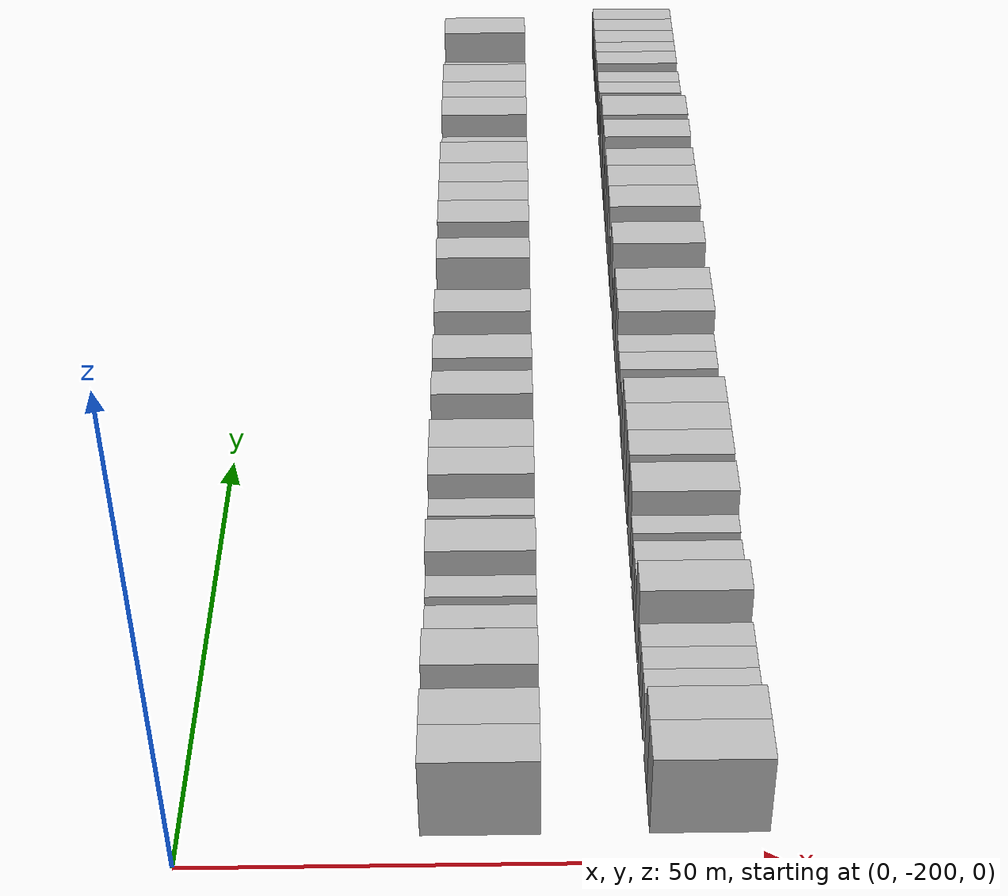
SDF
<sdf version="1.6">
 <world name="default">
  <model name="building_1">
   <static>1</static>
   <pose>25.0000 -194.9752 0 0.000000 0.000000 0.000000</pose>
   <link name="link">
    <pose>0 0 4.50 0 0 0</pose>
    <collision name="collision"><geometry><box><size>10.0000 4.0495 9.0000</size></box></geometry></collision>
    <visual name="visual">
     <cast_shadows>0</cast_shadows>
     <geometry><box><size>10.0000 4.0495 9.0000</size></box></geometry>
     <material>
      <script>
       <uri>model://HANNAS_wall/materials/scripts</uri>
       <uri>model://HANNAS_wall/materials/textures</uri>
       <name>vrc/HANNAS_wall</name>
      </script>
     </material>
    </visual>
   </link>
  </model>
  <model name="building_2">
   <static>1</static>
   <pose>25.0000 -190.9780 0 0.000000 0.000000 0.000000</pose>
   <link name="link">
    <pose>0 0 4.50 0 0 0</pose>
    <collision name="collision"><geometry><box><size>10.0000 3.9449 9.0000</size></box></geometry></collision>
    <visual name="visual">
     <cast_shadows>0</cast_shadows>
     <geometry><box><size>10.0000 3.9449 9.0000</size></box></geometry>
     <material>
      <script>
       <uri>model://HANNAS_wall/materials/scripts</uri>
       <uri>model://HANNAS_wall/materials/textures</uri>
       <name>vrc/HANNAS_wall</name>
      </script>
     </material>
    </visual>
   </link>
  </model>
  <model name="building_3">
   <static>1</static>
   <pose>25.0000 -187.6837 0 0.000000 0.000000 0.000000</pose>
   <link name="link">
    <pose>0 0 3.00 0 0 0</pose>
    <collision name="collision"><geometry><box><size>10.0000 2.6437 6.0000</size></box></geometry></collision>
    <visual name="visual">
     <cast_shadows>0</cast_shadows>
     <geometry><box><size>10.0000 2.6437 6.0000</size></box></geometry>
     <material>
      <script>
       <uri>model://HANNAS_wall/materials/scripts</uri>
       <uri>model://HANNAS_wall/materials/textures</uri>
       <name>vrc/HANNAS_wall</name>
      </script>
     </material>
    </visual>
   </link>
  </model>
  <model name="building_4">
   <static>1</static>
   <pose>25.0000 -184.2484 0 0.000000 0.000000 0.000000</pose>
   <link name="link">
    <pose>0 0 4.50 0 0 0</pose>
    <collision name="collision"><geometry><box><size>10.0000 4.2269 9.0000</size></box></geometry></collision>
    <visual name="visual">
     <cast_shadows>0</cast_shadows>
     <geometry><box><size>10.0000 4.2269 9.0000</size></box></geometry>
     <material>
      <script>
       <uri>model://HANNAS_wall/materials/scripts</uri>
       <uri>model://HANNAS_wall/materials/textures</uri>
       <name>vrc/HANNAS_wall</name>
      </script>
     </material>
    </visual>
   </link>
  </model>
  <model name="building_5">
   <static>1</static>
   <pose>25.0000 -180.6615 0 0.000000 0.000000 0.000000</pose>
   <link name="link">
    <pose>0 0 3.00 0 0 0</pose>
    <collision name="collision"><geometry><box><size>10.0000 2.9470 6.0000</size></box></geometry></collision>
    <visual name="visual">
     <cast_shadows>0</cast_shadows>
     <geometry><box><size>10.0000 2.9470 6.0000</size></box></geometry>
     <material>
      <script>
       <uri>model://HANNAS_wall/materials/scripts</uri>
       <uri>model://HANNAS_wall/materials/textures</uri>
       <name>vrc/HANNAS_wall</name>
      </script>
     </material>
    </visual>
   </link>
  </model>
  <model name="building_6">
   <static>1</static>
   <pose>25.0000 -177.7502 0 0.000000 0.000000 0.000000</pose>
   <link name="link">
    <pose>0 0 3.00 0 0 0</pose>
    <collision name="collision"><geometry><box><size>10.0000 2.8756 6.0000</size></box></geometry></collision>
    <visual name="visual">
     <cast_shadows>0</cast_shadows>
     <geometry><box><size>10.0000 2.8756 6.0000</size></box></geometry>
     <material>
      <script>
       <uri>model://HANNAS_wall/materials/scripts</uri>
       <uri>model://HANNAS_wall/materials/textures</uri>
       <name>vrc/HANNAS_wall</name>
      </script>
     </material>
    </visual>
   </link>
  </model>
  <model name="building_7">
   <static>1</static>
   <pose>25.0000 -173.9485 0 0.000000 0.000000 0.000000</pose>
   <link name="link">
    <pose>0 0 3.00 0 0 0</pose>
    <collision name="collision"><geometry><box><size>10.0000 2.7279 6.0000</size></box></geometry></collision>
    <visual name="visual">
     <cast_shadows>0</cast_shadows>
     <geometry><box><size>10.0000 2.7279 6.0000</size></box></geometry>
     <material>
      <script>
       <uri>model://HANNAS_wall/materials/scripts</uri>
       <uri>model://HANNAS_wall/materials/textures</uri>
       <name>vrc/HANNAS_wall</name>
      </script>
     </material>
    </visual>
   </link>
  </model>
  <model name="building_8">
   <static>1</static>
   <pose>25.0000 -170.4557 0 0.000000 0.000000 0.000000</pose>
   <link name="link">
    <pose>0 0 4.50 0 0 0</pose>
    <collision name="collision"><geometry><box><size>10.0000 4.2579 9.0000</size></box></geometry></collision>
    <visual name="visual">
     <cast_shadows>0</cast_shadows>
     <geometry><box><size>10.0000 4.2579 9.0000</size></box></geometry>
     <material>
      <script>
       <uri>model://HANNAS_wall/materials/scripts</uri>
       <uri>model://HANNAS_wall/materials/textures</uri>
       <name>vrc/HANNAS_wall</name>
      </script>
     </material>
    </visual>
   </link>
  </model>
  <model name="building_9">
   <static>1</static>
   <pose>25.0000 -167.0054 0 0.000000 0.000000 0.000000</pose>
   <link name="link">
    <pose>0 0 3.00 0 0 0</pose>
    <collision name="collision"><geometry><box><size>10.0000 2.6426 6.0000</size></box></geometry></collision>
    <visual name="visual">
     <cast_shadows>0</cast_shadows>
     <geometry><box><size>10.0000 2.6426 6.0000</size></box></geometry>
     <material>
      <script>
       <uri>model://HANNAS_wall/materials/scripts</uri>
       <uri>model://HANNAS_wall/materials/textures</uri>
       <name>vrc/HANNAS_wall</name>
      </script>
     </material>
    </visual>
   </link>
  </model>
  <model name="building_10">
   <static>1</static>
   <pose>25.0000 -163.4575 0 0.000000 0.000000 0.000000</pose>
   <link name="link">
    <pose>0 0 3.00 0 0 0</pose>
    <collision name="collision"><geometry><box><size>10.0000 2.4532 6.0000</size></box></geometry></collision>
    <visual name="visual">
     <cast_shadows>0</cast_shadows>
     <geometry><box><size>10.0000 2.4532 6.0000</size></box></geometry>
     <material>
      <script>
       <uri>model://HANNAS_wall/materials/scripts</uri>
       <uri>model://HANNAS_wall/materials/textures</uri>
       <name>vrc/HANNAS_wall</name>
      </script>
     </material>
    </visual>
   </link>
  </model>
  <model name="building_11">
   <static>1</static>
   <pose>25.0000 -160.2927 0 0.000000 0.000000 0.000000</pose>
   <link name="link">
    <pose>0 0 4.50 0 0 0</pose>
    <collision name="collision"><geometry><box><size>10.0000 3.8765 9.0000</size></box></geometry></collision>
    <visual name="visual">
     <cast_shadows>0</cast_shadows>
     <geometry><box><size>10.0000 3.8765 9.0000</size></box></geometry>
     <material>
      <script>
       <uri>model://HANNAS_wall/materials/scripts</uri>
       <uri>model://HANNAS_wall/materials/textures</uri>
       <name>vrc/HANNAS_wall</name>
      </script>
     </material>
    </visual>
   </link>
  </model>
  <model name="building_12">
   <static>1</static>
   <pose>25.0000 -156.2672 0 0.000000 0.000000 0.000000</pose>
   <link name="link">
    <pose>0 0 4.50 0 0 0</pose>
    <collision name="collision"><geometry><box><size>10.0000 4.1745 9.0000</size></box></geometry></collision>
    <visual name="visual">
     <cast_shadows>0</cast_shadows>
     <geometry><box><size>10.0000 4.1745 9.0000</size></box></geometry>
     <material>
      <script>
       <uri>model://HANNAS_wall/materials/scripts</uri>
       <uri>model://HANNAS_wall/materials/textures</uri>
       <name>vrc/HANNAS_wall</name>
      </script>
     </material>
    </visual>
   </link>
  </model>
  <model name="building_13">
   <static>1</static>
   <pose>25.0000 -152.7964 0 0.000000 0.000000 0.000000</pose>
   <link name="link">
    <pose>0 0 3.00 0 0 0</pose>
    <collision name="collision"><geometry><box><size>10.0000 2.7671 6.0000</size></box></geometry></collision>
    <visual name="visual">
     <cast_shadows>0</cast_shadows>
     <geometry><box><size>10.0000 2.7671 6.0000</size></box></geometry>
     <material>
      <script>
       <uri>model://HANNAS_wall/materials/scripts</uri>
       <uri>model://HANNAS_wall/materials/textures</uri>
       <name>vrc/HANNAS_wall</name>
      </script>
     </material>
    </visual>
   </link>
  </model>
  <model name="building_14">
   <static>1</static>
   <pose>25.0000 -148.5535 0 0.000000 0.000000 0.000000</pose>
   <link name="link">
    <pose>0 0 4.50 0 0 0</pose>
    <collision name="collision"><geometry><box><size>10.0000 3.7188 9.0000</size></box></geometry></collision>
    <visual name="visual">
     <cast_shadows>0</cast_shadows>
     <geometry><box><size>10.0000 3.7188 9.0000</size></box></geometry>
     <material>
      <script>
       <uri>model://HANNAS_wall/materials/scripts</uri>
       <uri>model://HANNAS_wall/materials/textures</uri>
       <name>vrc/HANNAS_wall</name>
      </script>
     </material>
    </visual>
   </link>
  </model>
  <model name="building_15">
   <static>1</static>
   <pose>25.0000 -142.7608 0 0.000000 0.000000 0.000000</pose>
   <link name="link">
    <pose>0 0 4.50 0 0 0</pose>
    <collision name="collision"><geometry><box><size>10.0000 3.8666 9.0000</size></box></geometry></collision>
    <visual name="visual">
     <cast_shadows>0</cast_shadows>
     <geometry><box><size>10.0000 3.8666 9.0000</size></box></geometry>
     <material>
      <script>
       <uri>model://HANNAS_wall/materials/scripts</uri>
       <uri>model://HANNAS_wall/materials/textures</uri>
       <name>vrc/HANNAS_wall</name>
      </script>
     </material>
    </visual>
   </link>
  </model>
  <model name="building_16">
   <static>1</static>
   <pose>25.0000 -138.4152 0 0.000000 0.000000 0.000000</pose>
   <link name="link">
    <pose>0 0 3.00 0 0 0</pose>
    <collision name="collision"><geometry><box><size>10.0000 2.8246 6.0000</size></box></geometry></collision>
    <visual name="visual">
     <cast_shadows>0</cast_shadows>
     <geometry><box><size>10.0000 2.8246 6.0000</size></box></geometry>
     <material>
      <script>
       <uri>model://HANNAS_wall/materials/scripts</uri>
       <uri>model://HANNAS_wall/materials/textures</uri>
       <name>vrc/HANNAS_wall</name>
      </script>
     </material>
    </visual>
   </link>
  </model>
  <model name="building_17">
   <static>1</static>
   <pose>25.0000 -135.0712 0 0.000000 0.000000 0.000000</pose>
   <link name="link">
    <pose>0 0 4.50 0 0 0</pose>
    <collision name="collision"><geometry><box><size>10.0000 3.8633 9.0000</size></box></geometry></collision>
    <visual name="visual">
     <cast_shadows>0</cast_shadows>
     <geometry><box><size>10.0000 3.8633 9.0000</size></box></geometry>
     <material>
      <script>
       <uri>model://HANNAS_wall/materials/scripts</uri>
       <uri>model://HANNAS_wall/materials/textures</uri>
       <name>vrc/HANNAS_wall</name>
      </script>
     </material>
    </visual>
   </link>
  </model>
  <model name="building_18">
   <static>1</static>
   <pose>25.0000 -130.7995 0 0.000000 0.000000 0.000000</pose>
   <link name="link">
    <pose>0 0 3.00 0 0 0</pose>
    <collision name="collision"><geometry><box><size>10.0000 2.6801 6.0000</size></box></geometry></collision>
    <visual name="visual">
     <cast_shadows>0</cast_shadows>
     <geometry><box><size>10.0000 2.6801 6.0000</size></box></geometry>
     <material>
      <script>
       <uri>model://HANNAS_wall/materials/scripts</uri>
       <uri>model://HANNAS_wall/materials/textures</uri>
       <name>vrc/HANNAS_wall</name>
      </script>
     </material>
    </visual>
   </link>
  </model>
  <model name="building_19">
   <static>1</static>
   <pose>25.0000 -125.5500 0 0.000000 0.000000 0.000000</pose>
   <link name="link">
    <pose>0 0 4.50 0 0 0</pose>
    <collision name="collision"><geometry><box><size>10.0000 3.8190 9.0000</size></box></geometry></collision>
    <visual name="visual">
     <cast_shadows>0</cast_shadows>
     <geometry><box><size>10.0000 3.8190 9.0000</size></box></geometry>
     <material>
      <script>
       <uri>model://HANNAS_wall/materials/scripts</uri>
       <uri>model://HANNAS_wall/materials/textures</uri>
       <name>vrc/HANNAS_wall</name>
      </script>
     </material>
    </visual>
   </link>
  </model>
  <model name="building_20">
   <static>1</static>
   <pose>25.0000 -122.1705 0 0.000000 0.000000 0.000000</pose>
   <link name="link">
    <pose>0 0 3.00 0 0 0</pose>
    <collision name="collision"><geometry><box><size>10.0000 2.9399 6.0000</size></box></geometry></collision>
    <visual name="visual">
     <cast_shadows>0</cast_shadows>
     <geometry><box><size>10.0000 2.9399 6.0000</size></box></geometry>
     <material>
      <script>
       <uri>model://HANNAS_wall/materials/scripts</uri>
       <uri>model://HANNAS_wall/materials/textures</uri>
       <name>vrc/HANNAS_wall</name>
      </script>
     </material>
    </visual>
   </link>
  </model>
  <model name="building_21">
   <static>1</static>
   <pose>25.0000 -118.5584 0 0.000000 0.000000 0.000000</pose>
   <link name="link">
    <pose>0 0 4.50 0 0 0</pose>
    <collision name="collision"><geometry><box><size>10.0000 4.2843 9.0000</size></box></geometry></collision>
    <visual name="visual">
     <cast_shadows>0</cast_shadows>
     <geometry><box><size>10.0000 4.2843 9.0000</size></box></geometry>
     <material>
      <script>
       <uri>model://HANNAS_wall/materials/scripts</uri>
       <uri>model://HANNAS_wall/materials/textures</uri>
       <name>vrc/HANNAS_wall</name>
      </script>
     </material>
    </visual>
   </link>
  </model>
  <model name="building_22">
   <static>1</static>
   <pose>25.0000 -114.5460 0 0.000000 0.000000 0.000000</pose>
   <link name="link">
    <pose>0 0 4.50 0 0 0</pose>
    <collision name="collision"><geometry><box><size>10.0000 3.7405 9.0000</size></box></geometry></collision>
    <visual name="visual">
     <cast_shadows>0</cast_shadows>
     <geometry><box><size>10.0000 3.7405 9.0000</size></box></geometry>
     <material>
      <script>
       <uri>model://HANNAS_wall/materials/scripts</uri>
       <uri>model://HANNAS_wall/materials/textures</uri>
       <name>vrc/HANNAS_wall</name>
      </script>
     </material>
    </visual>
   </link>
  </model>
  <model name="building_23">
   <static>1</static>
   <pose>25.0000 -110.7014 0 0.000000 0.000000 0.000000</pose>
   <link name="link">
    <pose>0 0 4.50 0 0 0</pose>
    <collision name="collision"><geometry><box><size>10.0000 3.9487 9.0000</size></box></geometry></collision>
    <visual name="visual">
     <cast_shadows>0</cast_shadows>
     <geometry><box><size>10.0000 3.9487 9.0000</size></box></geometry>
     <material>
      <script>
       <uri>model://HANNAS_wall/materials/scripts</uri>
       <uri>model://HANNAS_wall/materials/textures</uri>
       <name>vrc/HANNAS_wall</name>
      </script>
     </material>
    </visual>
   </link>
  </model>
  <model name="building_24">
   <static>1</static>
   <pose>25.0000 -106.5193 0 0.000000 0.000000 0.000000</pose>
   <link name="link">
    <pose>0 0 4.50 0 0 0</pose>
    <collision name="collision"><geometry><box><size>10.0000 4.4155 9.0000</size></box></geometry></collision>
    <visual name="visual">
     <cast_shadows>0</cast_shadows>
     <geometry><box><size>10.0000 4.4155 9.0000</size></box></geometry>
     <material>
      <script>
       <uri>model://HANNAS_wall/materials/scripts</uri>
       <uri>model://HANNAS_wall/materials/textures</uri>
       <name>vrc/HANNAS_wall</name>
      </script>
     </material>
    </visual>
   </link>
  </model>
  <model name="building_25">
   <static>1</static>
   <pose>25.0000 -102.8213 0 0.000000 0.000000 0.000000</pose>
   <link name="link">
    <pose>0 0 3.00 0 0 0</pose>
    <collision name="collision"><geometry><box><size>10.0000 2.9803 6.0000</size></box></geometry></collision>
    <visual name="visual">
     <cast_shadows>0</cast_shadows>
     <geometry><box><size>10.0000 2.9803 6.0000</size></box></geometry>
     <material>
      <script>
       <uri>model://HANNAS_wall/materials/scripts</uri>
       <uri>model://HANNAS_wall/materials/textures</uri>
       <name>vrc/HANNAS_wall</name>
      </script>
     </material>
    </visual>
   </link>
  </model>
  <model name="building_26">
   <static>1</static>
   <pose>25.0000 -99.8959 0 0.000000 0.000000 0.000000</pose>
   <link name="link">
    <pose>0 0 3.00 0 0 0</pose>
    <collision name="collision"><geometry><box><size>10.0000 2.8706 6.0000</size></box></geometry></collision>
    <visual name="visual">
     <cast_shadows>0</cast_shadows>
     <geometry><box><size>10.0000 2.8706 6.0000</size></box></geometry>
     <material>
      <script>
       <uri>model://HANNAS_wall/materials/scripts</uri>
       <uri>model://HANNAS_wall/materials/textures</uri>
       <name>vrc/HANNAS_wall</name>
      </script>
     </material>
    </visual>
   </link>
  </model>
  <model name="building_27">
   <static>1</static>
   <pose>25.0000 -96.4056 0 0.000000 0.000000 0.000000</pose>
   <link name="link">
    <pose>0 0 4.50 0 0 0</pose>
    <collision name="collision"><geometry><box><size>10.0000 4.1100 9.0000</size></box></geometry></collision>
    <visual name="visual">
     <cast_shadows>0</cast_shadows>
     <geometry><box><size>10.0000 4.1100 9.0000</size></box></geometry>
     <material>
      <script>
       <uri>model://HANNAS_wall/materials/scripts</uri>
       <uri>model://HANNAS_wall/materials/textures</uri>
       <name>vrc/HANNAS_wall</name>
      </script>
     </material>
    </visual>
   </link>
  </model>
  <model name="building_28">
   <static>1</static>
   <pose>25.0000 -92.5490 0 0.000000 0.000000 0.000000</pose>
   <link name="link">
    <pose>0 0 4.50 0 0 0</pose>
    <collision name="collision"><geometry><box><size>10.0000 3.6030 9.0000</size></box></geometry></collision>
    <visual name="visual">
     <cast_shadows>0</cast_shadows>
     <geometry><box><size>10.0000 3.6030 9.0000</size></box></geometry>
     <material>
      <script>
       <uri>model://HANNAS_wall/materials/scripts</uri>
       <uri>model://HANNAS_wall/materials/textures</uri>
       <name>vrc/HANNAS_wall</name>
      </script>
     </material>
    </visual>
   </link>
  </model>
  <model name="building_29">
   <static>1</static>
   <pose>25.0000 -88.7035 0 0.000000 0.000000 0.000000</pose>
   <link name="link">
    <pose>0 0 4.50 0 0 0</pose>
    <collision name="collision"><geometry><box><size>10.0000 4.0882 9.0000</size></box></geometry></collision>
    <visual name="visual">
     <cast_shadows>0</cast_shadows>
     <geometry><box><size>10.0000 4.0882 9.0000</size></box></geometry>
     <material>
      <script>
       <uri>model://HANNAS_wall/materials/scripts</uri>
       <uri>model://HANNAS_wall/materials/textures</uri>
       <name>vrc/HANNAS_wall</name>
      </script>
     </material>
    </visual>
   </link>
  </model>
  <model name="building_30">
   <static>1</static>
   <pose>25.0000 -85.2844 0 0.000000 0.000000 0.000000</pose>
   <link name="link">
    <pose>0 0 3.00 0 0 0</pose>
    <collision name="collision"><geometry><box><size>10.0000 2.7500 6.0000</size></box></geometry></collision>
    <visual name="visual">
     <cast_shadows>0</cast_shadows>
     <geometry><box><size>10.0000 2.7500 6.0000</size></box></geometry>
     <material>
      <script>
       <uri>model://HANNAS_wall/materials/scripts</uri>
       <uri>model://HANNAS_wall/materials/textures</uri>
       <name>vrc/HANNAS_wall</name>
      </script>
     </material>
    </visual>
   </link>
  </model>
  <model name="building_31">
   <static>1</static>
   <pose>25.0000 -82.4349 0 0.000000 0.000000 0.000000</pose>
   <link name="link">
    <pose>0 0 3.00 0 0 0</pose>
    <collision name="collision"><geometry><box><size>10.0000 2.9490 6.0000</size></box></geometry></collision>
    <visual name="visual">
     <cast_shadows>0</cast_shadows>
     <geometry><box><size>10.0000 2.9490 6.0000</size></box></geometry>
     <material>
      <script>
       <uri>model://HANNAS_wall/materials/scripts</uri>
       <uri>model://HANNAS_wall/materials/textures</uri>
       <name>vrc/HANNAS_wall</name>
      </script>
     </material>
    </visual>
   </link>
  </model>
  <model name="building_32">
   <static>1</static>
   <pose>25.0000 -77.0061 0 0.000000 0.000000 0.000000</pose>
   <link name="link">
    <pose>0 0 4.50 0 0 0</pose>
    <collision name="collision"><geometry><box><size>10.0000 3.9085 9.0000</size></box></geometry></collision>
    <visual name="visual">
     <cast_shadows>0</cast_shadows>
     <geometry><box><size>10.0000 3.9085 9.0000</size></box></geometry>
     <material>
      <script>
       <uri>model://HANNAS_wall/materials/scripts</uri>
       <uri>model://HANNAS_wall/materials/textures</uri>
       <name>vrc/HANNAS_wall</name>
      </script>
     </material>
    </visual>
   </link>
  </model>
  <model name="building_33">
   <static>1</static>
   <pose>25.0000 -73.7055 0 0.000000 0.000000 0.000000</pose>
   <link name="link">
    <pose>0 0 3.00 0 0 0</pose>
    <collision name="collision"><geometry><box><size>10.0000 2.6928 6.0000</size></box></geometry></collision>
    <visual name="visual">
     <cast_shadows>0</cast_shadows>
     <geometry><box><size>10.0000 2.6928 6.0000</size></box></geometry>
     <material>
      <script>
       <uri>model://HANNAS_wall/materials/scripts</uri>
       <uri>model://HANNAS_wall/materials/textures</uri>
       <name>vrc/HANNAS_wall</name>
      </script>
     </material>
    </visual>
   </link>
  </model>
  <model name="building_34">
   <static>1</static>
   <pose>25.0000 -71.0634 0 0.000000 0.000000 0.000000</pose>
   <link name="link">
    <pose>0 0 3.00 0 0 0</pose>
    <collision name="collision"><geometry><box><size>10.0000 2.5914 6.0000</size></box></geometry></collision>
    <visual name="visual">
     <cast_shadows>0</cast_shadows>
     <geometry><box><size>10.0000 2.5914 6.0000</size></box></geometry>
     <material>
      <script>
       <uri>model://HANNAS_wall/materials/scripts</uri>
       <uri>model://HANNAS_wall/materials/textures</uri>
       <name>vrc/HANNAS_wall</name>
      </script>
     </material>
    </visual>
   </link>
  </model>
  <model name="building_104">
   <static>1</static>
   <pose>44.0000 -194.8557 0 0.000000 0.000000 0.000000</pose>
   <link name="link">
    <pose>0 0 4.50 0 0 0</pose>
    <collision name="collision"><geometry><box><size>10.0000 4.2886 9.0000</size></box></geometry></collision>
    <visual name="visual">
     <cast_shadows>0</cast_shadows>
     <geometry><box><size>10.0000 4.2886 9.0000</size></box></geometry>
     <material>
      <script>
       <uri>model://HANNAS_wall/materials/scripts</uri>
       <uri>model://HANNAS_wall/materials/textures</uri>
       <name>vrc/HANNAS_wall</name>
      </script>
     </material>
    </visual>
   </link>
  </model>
  <model name="building_105">
   <static>1</static>
   <pose>44.0000 -190.8731 0 0.000000 0.000000 0.000000</pose>
   <link name="link">
    <pose>0 0 4.50 0 0 0</pose>
    <collision name="collision"><geometry><box><size>10.0000 3.6766 9.0000</size></box></geometry></collision>
    <visual name="visual">
     <cast_shadows>0</cast_shadows>
     <geometry><box><size>10.0000 3.6766 9.0000</size></box></geometry>
     <material>
      <script>
       <uri>model://HANNAS_wall/materials/scripts</uri>
       <uri>model://HANNAS_wall/materials/textures</uri>
       <name>vrc/HANNAS_wall</name>
      </script>
     </material>
    </visual>
   </link>
  </model>
  <model name="building_106">
   <static>1</static>
   <pose>44.0000 -185.6435 0 0.000000 0.000000 0.000000</pose>
   <link name="link">
    <pose>0 0 3.00 0 0 0</pose>
    <collision name="collision"><geometry><box><size>10.0000 2.7827 6.0000</size></box></geometry></collision>
    <visual name="visual">
     <cast_shadows>0</cast_shadows>
     <geometry><box><size>10.0000 2.7827 6.0000</size></box></geometry>
     <material>
      <script>
       <uri>model://HANNAS_wall/materials/scripts</uri>
       <uri>model://HANNAS_wall/materials/textures</uri>
       <name>vrc/HANNAS_wall</name>
      </script>
     </material>
    </visual>
   </link>
  </model>
  <model name="building_107">
   <static>1</static>
   <pose>44.0000 -182.9568 0 0.000000 0.000000 0.000000</pose>
   <link name="link">
    <pose>0 0 3.00 0 0 0</pose>
    <collision name="collision"><geometry><box><size>10.0000 2.5907 6.0000</size></box></geometry></collision>
    <visual name="visual">
     <cast_shadows>0</cast_shadows>
     <geometry><box><size>10.0000 2.5907 6.0000</size></box></geometry>
     <material>
      <script>
       <uri>model://HANNAS_wall/materials/scripts</uri>
       <uri>model://HANNAS_wall/materials/textures</uri>
       <name>vrc/HANNAS_wall</name>
      </script>
     </material>
    </visual>
   </link>
  </model>
  <model name="building_108">
   <static>1</static>
   <pose>44.0000 -180.2577 0 0.000000 0.000000 0.000000</pose>
   <link name="link">
    <pose>0 0 3.00 0 0 0</pose>
    <collision name="collision"><geometry><box><size>10.0000 2.8075 6.0000</size></box></geometry></collision>
    <visual name="visual">
     <cast_shadows>0</cast_shadows>
     <geometry><box><size>10.0000 2.8075 6.0000</size></box></geometry>
     <material>
      <script>
       <uri>model://HANNAS_wall/materials/scripts</uri>
       <uri>model://HANNAS_wall/materials/textures</uri>
       <name>vrc/HANNAS_wall</name>
      </script>
     </material>
    </visual>
   </link>
  </model>
  <model name="building_109">
   <static>1</static>
   <pose>44.0000 -175.9350 0 0.000000 0.000000 0.000000</pose>
   <link name="link">
    <pose>0 0 4.50 0 0 0</pose>
    <collision name="collision"><geometry><box><size>10.0000 3.8379 9.0000</size></box></geometry></collision>
    <visual name="visual">
     <cast_shadows>0</cast_shadows>
     <geometry><box><size>10.0000 3.8379 9.0000</size></box></geometry>
     <material>
      <script>
       <uri>model://HANNAS_wall/materials/scripts</uri>
       <uri>model://HANNAS_wall/materials/textures</uri>
       <name>vrc/HANNAS_wall</name>
      </script>
     </material>
    </visual>
   </link>
  </model>
  <model name="building_110">
   <static>1</static>
   <pose>44.0000 -172.6588 0 0.000000 0.000000 0.000000</pose>
   <link name="link">
    <pose>0 0 3.00 0 0 0</pose>
    <collision name="collision"><geometry><box><size>10.0000 2.7145 6.0000</size></box></geometry></collision>
    <visual name="visual">
     <cast_shadows>0</cast_shadows>
     <geometry><box><size>10.0000 2.7145 6.0000</size></box></geometry>
     <material>
      <script>
       <uri>model://HANNAS_wall/materials/scripts</uri>
       <uri>model://HANNAS_wall/materials/textures</uri>
       <name>vrc/HANNAS_wall</name>
      </script>
     </material>
    </visual>
   </link>
  </model>
  <model name="building_111">
   <static>1</static>
   <pose>44.0000 -169.8060 0 0.000000 0.000000 0.000000</pose>
   <link name="link">
    <pose>0 0 3.00 0 0 0</pose>
    <collision name="collision"><geometry><box><size>10.0000 2.9911 6.0000</size></box></geometry></collision>
    <visual name="visual">
     <cast_shadows>0</cast_shadows>
     <geometry><box><size>10.0000 2.9911 6.0000</size></box></geometry>
     <material>
      <script>
       <uri>model://HANNAS_wall/materials/scripts</uri>
       <uri>model://HANNAS_wall/materials/textures</uri>
       <name>vrc/HANNAS_wall</name>
      </script>
     </material>
    </visual>
   </link>
  </model>
  <model name="building_112">
   <static>1</static>
   <pose>44.0000 -166.0971 0 0.000000 0.000000 0.000000</pose>
   <link name="link">
    <pose>0 0 3.00 0 0 0</pose>
    <collision name="collision"><geometry><box><size>10.0000 2.4268 6.0000</size></box></geometry></collision>
    <visual name="visual">
     <cast_shadows>0</cast_shadows>
     <geometry><box><size>10.0000 2.4268 6.0000</size></box></geometry>
     <material>
      <script>
       <uri>model://HANNAS_wall/materials/scripts</uri>
       <uri>model://HANNAS_wall/materials/textures</uri>
       <name>vrc/HANNAS_wall</name>
      </script>
     </material>
    </visual>
   </link>
  </model>
  <model name="building_113">
   <static>1</static>
   <pose>44.0000 -162.8069 0 0.000000 0.000000 0.000000</pose>
   <link name="link">
    <pose>0 0 4.50 0 0 0</pose>
    <collision name="collision"><geometry><box><size>10.0000 4.1535 9.0000</size></box></geometry></collision>
    <visual name="visual">
     <cast_shadows>0</cast_shadows>
     <geometry><box><size>10.0000 4.1535 9.0000</size></box></geometry>
     <material>
      <script>
       <uri>model://HANNAS_wall/materials/scripts</uri>
       <uri>model://HANNAS_wall/materials/textures</uri>
       <name>vrc/HANNAS_wall</name>
      </script>
     </material>
    </visual>
   </link>
  </model>
  <model name="building_114">
   <static>1</static>
   <pose>44.0000 -157.8930 0 0.000000 0.000000 0.000000</pose>
   <link name="link">
    <pose>0 0 4.50 0 0 0</pose>
    <collision name="collision"><geometry><box><size>10.0000 3.6743 9.0000</size></box></geometry></collision>
    <visual name="visual">
     <cast_shadows>0</cast_shadows>
     <geometry><box><size>10.0000 3.6743 9.0000</size></box></geometry>
     <material>
      <script>
       <uri>model://HANNAS_wall/materials/scripts</uri>
       <uri>model://HANNAS_wall/materials/textures</uri>
       <name>vrc/HANNAS_wall</name>
      </script>
     </material>
    </visual>
   </link>
  </model>
  <model name="building_115">
   <static>1</static>
   <pose>44.0000 -154.0162 0 0.000000 0.000000 0.000000</pose>
   <link name="link">
    <pose>0 0 4.50 0 0 0</pose>
    <collision name="collision"><geometry><box><size>10.0000 4.0792 9.0000</size></box></geometry></collision>
    <visual name="visual">
     <cast_shadows>0</cast_shadows>
     <geometry><box><size>10.0000 4.0792 9.0000</size></box></geometry>
     <material>
      <script>
       <uri>model://HANNAS_wall/materials/scripts</uri>
       <uri>model://HANNAS_wall/materials/textures</uri>
       <name>vrc/HANNAS_wall</name>
      </script>
     </material>
    </visual>
   </link>
  </model>
  <model name="building_116">
   <static>1</static>
   <pose>44.0000 -150.0028 0 0.000000 0.000000 0.000000</pose>
   <link name="link">
    <pose>0 0 4.50 0 0 0</pose>
    <collision name="collision"><geometry><box><size>10.0000 3.9476 9.0000</size></box></geometry></collision>
    <visual name="visual">
     <cast_shadows>0</cast_shadows>
     <geometry><box><size>10.0000 3.9476 9.0000</size></box></geometry>
     <material>
      <script>
       <uri>model://HANNAS_wall/materials/scripts</uri>
       <uri>model://HANNAS_wall/materials/textures</uri>
       <name>vrc/HANNAS_wall</name>
      </script>
     </material>
    </visual>
   </link>
  </model>
  <model name="building_117">
   <static>1</static>
   <pose>44.0000 -146.5435 0 0.000000 0.000000 0.000000</pose>
   <link name="link">
    <pose>0 0 3.00 0 0 0</pose>
    <collision name="collision"><geometry><box><size>10.0000 2.9709 6.0000</size></box></geometry></collision>
    <visual name="visual">
     <cast_shadows>0</cast_shadows>
     <geometry><box><size>10.0000 2.9709 6.0000</size></box></geometry>
     <material>
      <script>
       <uri>model://HANNAS_wall/materials/scripts</uri>
       <uri>model://HANNAS_wall/materials/textures</uri>
       <name>vrc/HANNAS_wall</name>
      </script>
     </material>
    </visual>
   </link>
  </model>
  <model name="building_118">
   <static>1</static>
   <pose>44.0000 -141.5828 0 0.000000 0.000000 0.000000</pose>
   <link name="link">
    <pose>0 0 3.00 0 0 0</pose>
    <collision name="collision"><geometry><box><size>10.0000 2.9506 6.0000</size></box></geometry></collision>
    <visual name="visual">
     <cast_shadows>0</cast_shadows>
     <geometry><box><size>10.0000 2.9506 6.0000</size></box></geometry>
     <material>
      <script>
       <uri>model://HANNAS_wall/materials/scripts</uri>
       <uri>model://HANNAS_wall/materials/textures</uri>
       <name>vrc/HANNAS_wall</name>
      </script>
     </material>
    </visual>
   </link>
  </model>
  <model name="building_119">
   <static>1</static>
   <pose>44.0000 -138.6603 0 0.000000 0.000000 0.000000</pose>
   <link name="link">
    <pose>0 0 3.00 0 0 0</pose>
    <collision name="collision"><geometry><box><size>10.0000 2.8942 6.0000</size></box></geometry></collision>
    <visual name="visual">
     <cast_shadows>0</cast_shadows>
     <geometry><box><size>10.0000 2.8942 6.0000</size></box></geometry>
     <material>
      <script>
       <uri>model://HANNAS_wall/materials/scripts</uri>
       <uri>model://HANNAS_wall/materials/textures</uri>
       <name>vrc/HANNAS_wall</name>
      </script>
     </material>
    </visual>
   </link>
  </model>
  <model name="building_120">
   <static>1</static>
   <pose>44.0000 -135.2993 0 0.000000 0.000000 0.000000</pose>
   <link name="link">
    <pose>0 0 4.50 0 0 0</pose>
    <collision name="collision"><geometry><box><size>10.0000 3.8279 9.0000</size></box></geometry></collision>
    <visual name="visual">
     <cast_shadows>0</cast_shadows>
     <geometry><box><size>10.0000 3.8279 9.0000</size></box></geometry>
     <material>
      <script>
       <uri>model://HANNAS_wall/materials/scripts</uri>
       <uri>model://HANNAS_wall/materials/textures</uri>
       <name>vrc/HANNAS_wall</name>
      </script>
     </material>
    </visual>
   </link>
  </model>
  <model name="building_121">
   <static>1</static>
   <pose>44.0000 -131.4509 0 0.000000 0.000000 0.000000</pose>
   <link name="link">
    <pose>0 0 4.50 0 0 0</pose>
    <collision name="collision"><geometry><box><size>10.0000 3.8688 9.0000</size></box></geometry></collision>
    <visual name="visual">
     <cast_shadows>0</cast_shadows>
     <geometry><box><size>10.0000 3.8688 9.0000</size></box></geometry>
     <material>
      <script>
       <uri>model://HANNAS_wall/materials/scripts</uri>
       <uri>model://HANNAS_wall/materials/textures</uri>
       <name>vrc/HANNAS_wall</name>
      </script>
     </material>
    </visual>
   </link>
  </model>
  <model name="building_122">
   <static>1</static>
   <pose>44.0000 -128.2875 0 0.000000 0.000000 0.000000</pose>
   <link name="link">
    <pose>0 0 3.00 0 0 0</pose>
    <collision name="collision"><geometry><box><size>10.0000 2.4580 6.0000</size></box></geometry></collision>
    <visual name="visual">
     <cast_shadows>0</cast_shadows>
     <geometry><box><size>10.0000 2.4580 6.0000</size></box></geometry>
     <material>
      <script>
       <uri>model://HANNAS_wall/materials/scripts</uri>
       <uri>model://HANNAS_wall/materials/textures</uri>
       <name>vrc/HANNAS_wall</name>
      </script>
     </material>
    </visual>
   </link>
  </model>
  <model name="building_123">
   <static>1</static>
   <pose>44.0000 -122.9733 0 0.000000 0.000000 0.000000</pose>
   <link name="link">
    <pose>0 0 4.50 0 0 0</pose>
    <collision name="collision"><geometry><box><size>10.0000 4.1703 9.0000</size></box></geometry></collision>
    <visual name="visual">
     <cast_shadows>0</cast_shadows>
     <geometry><box><size>10.0000 4.1703 9.0000</size></box></geometry>
     <material>
      <script>
       <uri>model://HANNAS_wall/materials/scripts</uri>
       <uri>model://HANNAS_wall/materials/textures</uri>
       <name>vrc/HANNAS_wall</name>
      </script>
     </material>
    </visual>
   </link>
  </model>
  <model name="building_124">
   <static>1</static>
   <pose>44.0000 -119.4177 0 0.000000 0.000000 0.000000</pose>
   <link name="link">
    <pose>0 0 3.00 0 0 0</pose>
    <collision name="collision"><geometry><box><size>10.0000 2.9409 6.0000</size></box></geometry></collision>
    <visual name="visual">
     <cast_shadows>0</cast_shadows>
     <geometry><box><size>10.0000 2.9409 6.0000</size></box></geometry>
     <material>
      <script>
       <uri>model://HANNAS_wall/materials/scripts</uri>
       <uri>model://HANNAS_wall/materials/textures</uri>
       <name>vrc/HANNAS_wall</name>
      </script>
     </material>
    </visual>
   </link>
  </model>
  <model name="building_125">
   <static>1</static>
   <pose>44.0000 -115.8198 0 0.000000 0.000000 0.000000</pose>
   <link name="link">
    <pose>0 0 4.50 0 0 0</pose>
    <collision name="collision"><geometry><box><size>10.0000 4.2550 9.0000</size></box></geometry></collision>
    <visual name="visual">
     <cast_shadows>0</cast_shadows>
     <geometry><box><size>10.0000 4.2550 9.0000</size></box></geometry>
     <material>
      <script>
       <uri>model://HANNAS_wall/materials/scripts</uri>
       <uri>model://HANNAS_wall/materials/textures</uri>
       <name>vrc/HANNAS_wall</name>
      </script>
     </material>
    </visual>
   </link>
  </model>
  <model name="building_126">
   <static>1</static>
   <pose>44.0000 -111.6314 0 0.000000 0.000000 0.000000</pose>
   <link name="link">
    <pose>0 0 4.50 0 0 0</pose>
    <collision name="collision"><geometry><box><size>10.0000 4.1218 9.0000</size></box></geometry></collision>
    <visual name="visual">
     <cast_shadows>0</cast_shadows>
     <geometry><box><size>10.0000 4.1218 9.0000</size></box></geometry>
     <material>
      <script>
       <uri>model://HANNAS_wall/materials/scripts</uri>
       <uri>model://HANNAS_wall/materials/textures</uri>
       <name>vrc/HANNAS_wall</name>
      </script>
     </material>
    </visual>
   </link>
  </model>
  <model name="building_127">
   <static>1</static>
   <pose>44.0000 -107.7674 0 0.000000 0.000000 0.000000</pose>
   <link name="link">
    <pose>0 0 4.50 0 0 0</pose>
    <collision name="collision"><geometry><box><size>10.0000 3.6062 9.0000</size></box></geometry></collision>
    <visual name="visual">
     <cast_shadows>0</cast_shadows>
     <geometry><box><size>10.0000 3.6062 9.0000</size></box></geometry>
     <material>
      <script>
       <uri>model://HANNAS_wall/materials/scripts</uri>
       <uri>model://HANNAS_wall/materials/textures</uri>
       <name>vrc/HANNAS_wall</name>
      </script>
     </material>
    </visual>
   </link>
  </model>
  <model name="building_128">
   <static>1</static>
   <pose>44.0000 -104.7466 0 0.000000 0.000000 0.000000</pose>
   <link name="link">
    <pose>0 0 3.00 0 0 0</pose>
    <collision name="collision"><geometry><box><size>10.0000 2.4354 6.0000</size></box></geometry></collision>
    <visual name="visual">
     <cast_shadows>0</cast_shadows>
     <geometry><box><size>10.0000 2.4354 6.0000</size></box></geometry>
     <material>
      <script>
       <uri>model://HANNAS_wall/materials/scripts</uri>
       <uri>model://HANNAS_wall/materials/textures</uri>
       <name>vrc/HANNAS_wall</name>
      </script>
     </material>
    </visual>
   </link>
  </model>
  <model name="building_129">
   <static>1</static>
   <pose>44.0000 -101.6099 0 0.000000 0.000000 0.000000</pose>
   <link name="link">
    <pose>0 0 4.50 0 0 0</pose>
    <collision name="collision"><geometry><box><size>10.0000 3.8379 9.0000</size></box></geometry></collision>
    <visual name="visual">
     <cast_shadows>0</cast_shadows>
     <geometry><box><size>10.0000 3.8379 9.0000</size></box></geometry>
     <material>
      <script>
       <uri>model://HANNAS_wall/materials/scripts</uri>
       <uri>model://HANNAS_wall/materials/textures</uri>
       <name>vrc/HANNAS_wall</name>
      </script>
     </material>
    </visual>
   </link>
  </model>
  <model name="building_130">
   <static>1</static>
   <pose>44.0000 -96.4911 0 0.000000 0.000000 0.000000</pose>
   <link name="link">
    <pose>0 0 4.50 0 0 0</pose>
    <collision name="collision"><geometry><box><size>10.0000 4.3998 9.0000</size></box></geometry></collision>
    <visual name="visual">
     <cast_shadows>0</cast_shadows>
     <geometry><box><size>10.0000 4.3998 9.0000</size></box></geometry>
     <material>
      <script>
       <uri>model://HANNAS_wall/materials/scripts</uri>
       <uri>model://HANNAS_wall/materials/textures</uri>
       <name>vrc/HANNAS_wall</name>
      </script>
     </material>
    </visual>
   </link>
  </model>
  <model name="building_131">
   <static>1</static>
   <pose>44.0000 -92.0099 0 0.000000 0.000000 0.000000</pose>
   <link name="link">
    <pose>0 0 3.00 0 0 0</pose>
    <collision name="collision"><geometry><box><size>10.0000 2.5627 6.0000</size></box></geometry></collision>
    <visual name="visual">
     <cast_shadows>0</cast_shadows>
     <geometry><box><size>10.0000 2.5627 6.0000</size></box></geometry>
     <material>
      <script>
       <uri>model://HANNAS_wall/materials/scripts</uri>
       <uri>model://HANNAS_wall/materials/textures</uri>
       <name>vrc/HANNAS_wall</name>
      </script>
     </material>
    </visual>
   </link>
  </model>
  <model name="building_132">
   <static>1</static>
   <pose>44.0000 -87.4024 0 0.000000 0.000000 0.000000</pose>
   <link name="link">
    <pose>0 0 3.00 0 0 0</pose>
    <collision name="collision"><geometry><box><size>10.0000 2.6521 6.0000</size></box></geometry></collision>
    <visual name="visual">
     <cast_shadows>0</cast_shadows>
     <geometry><box><size>10.0000 2.6521 6.0000</size></box></geometry>
     <material>
      <script>
       <uri>model://HANNAS_wall/materials/scripts</uri>
       <uri>model://HANNAS_wall/materials/textures</uri>
       <name>vrc/HANNAS_wall</name>
      </script>
     </material>
    </visual>
   </link>
  </model>
  <model name="building_133">
   <static>1</static>
   <pose>44.0000 -84.8236 0 0.000000 0.000000 0.000000</pose>
   <link name="link">
    <pose>0 0 3.00 0 0 0</pose>
    <collision name="collision"><geometry><box><size>10.0000 2.5056 6.0000</size></box></geometry></collision>
    <visual name="visual">
     <cast_shadows>0</cast_shadows>
     <geometry><box><size>10.0000 2.5056 6.0000</size></box></geometry>
     <material>
      <script>
       <uri>model://HANNAS_wall/materials/scripts</uri>
       <uri>model://HANNAS_wall/materials/textures</uri>
       <name>vrc/HANNAS_wall</name>
      </script>
     </material>
    </visual>
   </link>
  </model>
  <model name="building_134">
   <static>1</static>
   <pose>44.0000 -80.0719 0 0.000000 0.000000 0.000000</pose>
   <link name="link">
    <pose>0 0 3.00 0 0 0</pose>
    <collision name="collision"><geometry><box><size>10.0000 2.9977 6.0000</size></box></geometry></collision>
    <visual name="visual">
     <cast_shadows>0</cast_shadows>
     <geometry><box><size>10.0000 2.9977 6.0000</size></box></geometry>
     <material>
      <script>
       <uri>model://HANNAS_wall/materials/scripts</uri>
       <uri>model://HANNAS_wall/materials/textures</uri>
       <name>vrc/HANNAS_wall</name>
      </script>
     </material>
    </visual>
   </link>
  </model>
  <model name="building_135">
   <static>1</static>
   <pose>44.0000 -77.3471 0 0.000000 0.000000 0.000000</pose>
   <link name="link">
    <pose>0 0 3.00 0 0 0</pose>
    <collision name="collision"><geometry><box><size>10.0000 2.4519 6.0000</size></box></geometry></collision>
    <visual name="visual">
     <cast_shadows>0</cast_shadows>
     <geometry><box><size>10.0000 2.4519 6.0000</size></box></geometry>
     <material>
      <script>
       <uri>model://HANNAS_wall/materials/scripts</uri>
       <uri>model://HANNAS_wall/materials/textures</uri>
       <name>vrc/HANNAS_wall</name>
      </script>
     </material>
    </visual>
   </link>
  </model>
  <model name="building_136">
   <static>1</static>
   <pose>44.0000 -74.6593 0 0.000000 0.000000 0.000000</pose>
   <link name="link">
    <pose>0 0 3.00 0 0 0</pose>
    <collision name="collision"><geometry><box><size>10.0000 2.9236 6.0000</size></box></geometry></collision>
    <visual name="visual">
     <cast_shadows>0</cast_shadows>
     <geometry><box><size>10.0000 2.9236 6.0000</size></box></geometry>
     <material>
      <script>
       <uri>model://HANNAS_wall/materials/scripts</uri>
       <uri>model://HANNAS_wall/materials/textures</uri>
       <name>vrc/HANNAS_wall</name>
      </script>
     </material>
    </visual>
   </link>
  </model>
  <model name="building_137">
   <static>1</static>
   <pose>44.0000 -71.7108 0 0.000000 0.000000 0.000000</pose>
   <link name="link">
    <pose>0 0 3.00 0 0 0</pose>
    <collision name="collision"><geometry><box><size>10.0000 2.9734 6.0000</size></box></geometry></collision>
    <visual name="visual">
     <cast_shadows>0</cast_shadows>
     <geometry><box><size>10.0000 2.9734 6.0000</size></box></geometry>
     <material>
      <script>
       <uri>model://HANNAS_wall/materials/scripts</uri>
       <uri>model://HANNAS_wall/materials/textures</uri>
       <name>vrc/HANNAS_wall</name>
      </script>
     </material>
    </visual>
   </link>
  </model>
  <model name="building_138">
   <static>1</static>
   <pose>44.0000 -68.8604 0 0.000000 0.000000 0.000000</pose>
   <link name="link">
    <pose>0 0 3.00 0 0 0</pose>
    <collision name="collision"><geometry><box><size>10.0000 2.7275 6.0000</size></box></geometry></collision>
    <visual name="visual">
     <cast_shadows>0</cast_shadows>
     <geometry><box><size>10.0000 2.7275 6.0000</size></box></geometry>
     <material>
      <script>
       <uri>model://HANNAS_wall/materials/scripts</uri>
       <uri>model://HANNAS_wall/materials/textures</uri>
       <name>vrc/HANNAS_wall</name>
      </script>
     </material>
    </visual>
   </link>
  </model>
 </world>
</sdf>
